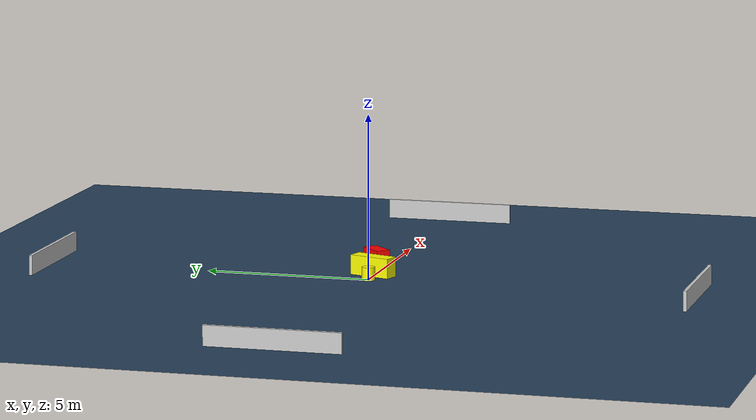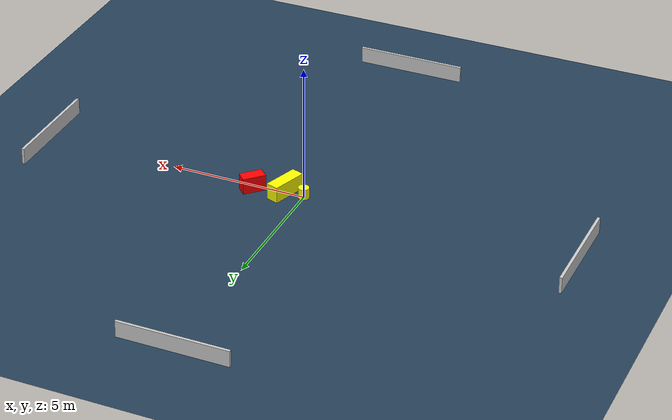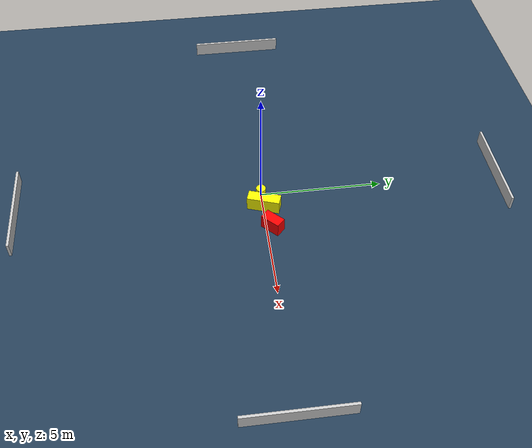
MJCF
<?xml version="1.0" ?>
<mujoco model="generated_environment">
  <option timestep="0.01" integrator="RK4" cone="elliptic"/>
  <default>
    <geom density="1"/>
  </default>
  <asset>
    <texture builtin="gradient" height="3072" name="skybox" rgb1="0.3 0.5 0.7" rgb2="0 0 0" type="skybox" width="512"/>
    <texture builtin="checker" height="300" name="groundplane" rgb1="0.2 0.3 0.4" rgb2="0.1 0.2 0.3" type="2d" width="300"/>
    <material name="groundplane" reflectance="0.2" texrepeat="5 5" texture="groundplane"/>
  </asset>
  <worldbody>
    <light dir="0 0 -1" directional="true" pos="0 0 1.5"/>
    <geom condim="3" friction="0.5 0.005 0.001" material="groundplane" name="floor" pos="0 0 0" size="0 0 0.05" type="plane"/>
    <body name="walls">
      <geom name="wall_1" condim="4" pos="-10.0 0.0 0.3" rgba="0.800000011920929 0.800000011920929 0.800000011920929 1.0" size="0.05 2.0 0.3" type="box"/>
      <geom name="wall_2" condim="4" pos="10.0 0.0 0.3" rgba="0.800000011920929 0.800000011920929 0.800000011920929 1.0" size="0.05 2.0 0.3" type="box"/>
      <geom name="wall_3" condim="4" pos="0.0 -10.0 0.3" rgba="0.800000011920929 0.800000011920929 0.800000011920929 1.0" size="2.0 0.05 0.3" type="box"/>
      <geom name="wall_4" condim="4" pos="0.0 10.0 0.3" rgba="0.800000011920929 0.800000011920929 0.800000011920929 1.0" size="2.0 0.05 0.3" type="box"/>
    </body>
    <body name="robot">
      <joint name="joint_x" type="slide" pos="0 0 0" axis="1 0 0"/>
      <joint name="joint_y" type="slide" pos="0 0 0" axis="0 1 0"/>
      <geom name="robot" type="cylinder" pos="0.0 0.0 0.2" size="0.2 0.2 0.0" mass="5.0" friction="1.0 0.005 0.0001" condim="4" rgba="1.0 1.0 0.0 1.0"/>
    </body>
    <body name="obstacle_1_movable">
      <geom name="obstacle_1_movable" condim="4" pos="0.6964487144479369 0.03508775174324781 0.3" euler="0 0 341.34415184905157" friction="0.0 0.005 0.001" rgba="1.0 1.0 0.0 1.0" size="0.23113141652124808 0.664346590935116 0.3" type="box" mass="0.1"/>
      <joint type="free"/>
    </body>
    <body name="obstacle_2_static">
      <geom name="obstacle_2_static" condim="4" pos="1.844591216340392 0.2379113629658007 0.3" euler="0 0 315.18522010619495" friction="0.0 0.005 0.001" rgba="1.0 0.0 0.0 1.0" size="0.22049860026944096 0.41905517131674414 0.3" type="box"/>
    </body>
  </worldbody>
  <actuator>
    <motor name="actuator_x" joint="joint_x" gear="1" ctrlrange="-1 1"/>
    <motor name="actuator_y" joint="joint_y" gear="1" ctrlrange="-1 1"/>
  </actuator>
</mujoco>
